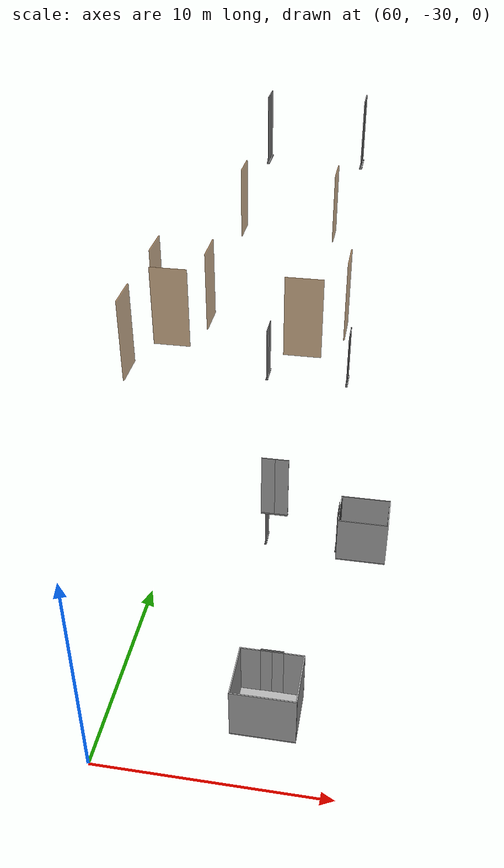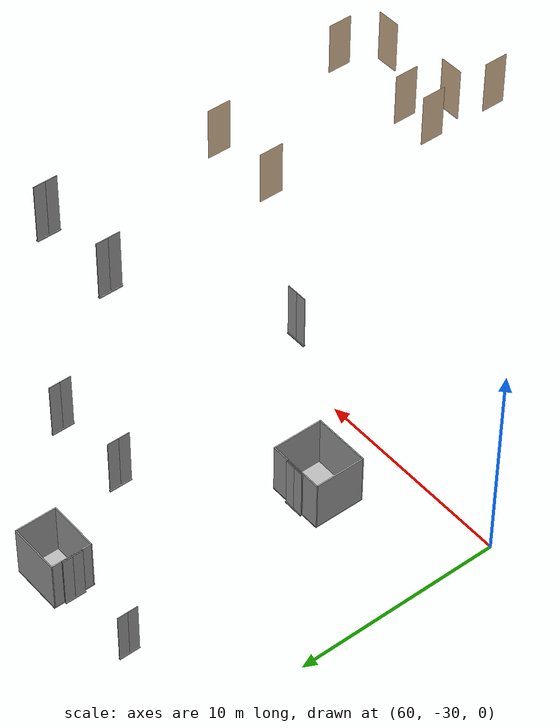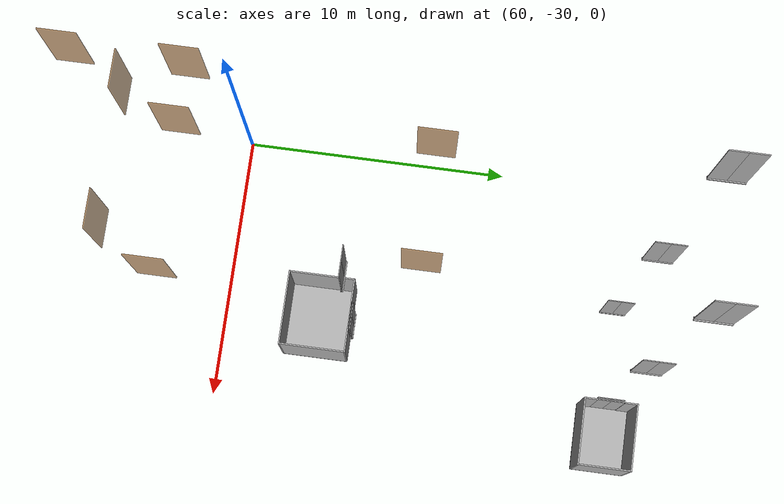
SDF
<sdf version="1.7">
 <world name="world">
  <include><uri>model://sun</uri></include>
  <model name="room18_door">
   <pose>65.2 -22.5 20.0 0 0 1.5707963267948966</pose>
   <plugin name="door" filename="libdoor.so">
    <v_max_door>0.5</v_max_door>
    <a_max_door>0.3</a_max_door>
    <a_nom_door>0.15</a_nom_door>
    <dx_min_door>0.01</dx_min_door>
    <f_max_door>500.0</f_max_door>
    <door name="room18_door" type="SwingDoor" left_joint_name="left_joint" right_joint_name="empty_joint"/>
   </plugin>
   <link name="left">
    <pose>0 0 1.11 0 0 0</pose>
    <visual name="left_visual">
     <geometry><box><size>0.99 0.03 2.2</size></box></geometry>
     <material><ambient>0.5 0.25 0 0.6</ambient><diffuse>0.5 0.25 0 0.6</diffuse></material>
    </visual>
    <collision name="left_collision">
     <geometry><box><size>0.99 0.03 2.2</size></box></geometry>
     <surface><contact><collide_bitmask>0x02</collide_bitmask></contact></surface>
    </collision>
    <inertial>
     <mass>50.0</mass>
     <inertia><ixx>20.17041666666667</ixx><iyy>24.250416666666673</iyy><izz>4.0875</izz></inertia>
    </inertial>
   </link>
   <joint name="left_joint" type="revolute">
    <parent>world</parent>
    <child>left</child>
    <axis><xyz>0 0 1</xyz><limit><lower>-1.57</lower><upper>0</upper></limit></axis>
    <pose>0.5 0 0 0 0 0</pose>
   </joint>
  </model>
  <model name="room19_door">
   <pose>63.95 -29.0 20.0 0 0 -1.5707963267948966</pose>
   <plugin name="door" filename="libdoor.so">
    <v_max_door>0.5</v_max_door>
    <a_max_door>0.3</a_max_door>
    <a_nom_door>0.15</a_nom_door>
    <dx_min_door>0.01</dx_min_door>
    <f_max_door>500.0</f_max_door>
    <door name="room19_door" type="SwingDoor" left_joint_name="empty_joint" right_joint_name="right_joint"/>
   </plugin>
   <link name="right">
    <pose>0 0 1.11 0 0 0</pose>
    <visual name="right_visual">
     <geometry><box><size>0.99 0.03 2.2</size></box></geometry>
     <material><ambient>0.5 0.25 0 0.6</ambient><diffuse>0.5 0.25 0 0.6</diffuse></material>
    </visual>
    <collision name="right_collision">
     <geometry><box><size>0.99 0.03 2.2</size></box></geometry>
     <surface><contact><collide_bitmask>0x02</collide_bitmask></contact></surface>
    </collision>
    <inertial>
     <mass>50.0</mass>
     <inertia><ixx>20.17041666666667</ixx><iyy>24.250416666666673</iyy><izz>4.0875</izz></inertia>
    </inertial>
   </link>
   <joint name="right_joint" type="revolute">
    <parent>world</parent>
    <child>right</child>
    <axis><xyz>0 0 1</xyz><limit><lower>0</lower><upper>1.57</upper></limit></axis>
    <pose>0.5 0 0 0 0 0</pose>
   </joint>
  </model>
  <model name="door7">
   <pose>65.45 -29.0 20.0 0 0 1.5707963267948966</pose>
   <plugin name="door" filename="libdoor.so">
    <v_max_door>0.5</v_max_door>
    <a_max_door>0.3</a_max_door>
    <a_nom_door>0.15</a_nom_door>
    <dx_min_door>0.01</dx_min_door>
    <f_max_door>500.0</f_max_door>
    <door name="door7" type="SwingDoor" left_joint_name="left_joint" right_joint_name="empty_joint"/>
   </plugin>
   <link name="left">
    <pose>0 0 1.11 0 0 0</pose>
    <visual name="left_visual">
     <geometry><box><size>0.99 0.03 2.2</size></box></geometry>
     <material><ambient>0.5 0.25 0 0.6</ambient><diffuse>0.5 0.25 0 0.6</diffuse></material>
    </visual>
    <collision name="left_collision">
     <geometry><box><size>0.99 0.03 2.2</size></box></geometry>
     <surface><contact><collide_bitmask>0x02</collide_bitmask></contact></surface>
    </collision>
    <inertial>
     <mass>50.0</mass>
     <inertia><ixx>20.17041666666667</ixx><iyy>24.250416666666673</iyy><izz>4.0875</izz></inertia>
    </inertial>
   </link>
   <joint name="left_joint" type="revolute">
    <parent>world</parent>
    <child>left</child>
    <axis><xyz>0 0 1</xyz><limit><lower>-1.57</lower><upper>0</upper></limit></axis>
    <pose>0.5 0 0 0 0 0</pose>
   </joint>
  </model>
  <model name="room20_door2">
   <pose>63.95 -32.0 20.0 0 0 -1.5707963267948966</pose>
   <plugin name="door" filename="libdoor.so">
    <v_max_door>0.5</v_max_door>
    <a_max_door>0.3</a_max_door>
    <a_nom_door>0.15</a_nom_door>
    <dx_min_door>0.01</dx_min_door>
    <f_max_door>500.0</f_max_door>
    <door name="room20_door2" type="SwingDoor" left_joint_name="empty_joint" right_joint_name="right_joint"/>
   </plugin>
   <link name="right">
    <pose>0 0 1.11 0 0 0</pose>
    <visual name="right_visual">
     <geometry><box><size>0.99 0.03 2.2</size></box></geometry>
     <material><ambient>0.5 0.25 0 0.6</ambient><diffuse>0.5 0.25 0 0.6</diffuse></material>
    </visual>
    <collision name="right_collision">
     <geometry><box><size>0.99 0.03 2.2</size></box></geometry>
     <surface><contact><collide_bitmask>0x02</collide_bitmask></contact></surface>
    </collision>
    <inertial>
     <mass>50.0</mass>
     <inertia><ixx>20.17041666666667</ixx><iyy>24.250416666666673</iyy><izz>4.0875</izz></inertia>
    </inertial>
   </link>
   <joint name="right_joint" type="revolute">
    <parent>world</parent>
    <child>right</child>
    <axis><xyz>0 0 1</xyz><limit><lower>0</lower><upper>1.57</upper></limit></axis>
    <pose>0.5 0 0 0 0 0</pose>
   </joint>
  </model>
  <model name="room20_door">
   <pose>64.7 -30.5 20.0 0 0 3.141592653589793</pose>
   <plugin name="door" filename="libdoor.so">
    <v_max_door>0.5</v_max_door>
    <a_max_door>0.3</a_max_door>
    <a_nom_door>0.15</a_nom_door>
    <dx_min_door>0.01</dx_min_door>
    <f_max_door>500.0</f_max_door>
    <door name="room20_door" type="SwingDoor" left_joint_name="left_joint" right_joint_name="empty_joint"/>
   </plugin>
   <link name="left">
    <pose>0 0 1.11 0 0 0</pose>
    <visual name="left_visual">
     <geometry><box><size>0.99 0.03 2.2</size></box></geometry>
     <material><ambient>0.5 0.25 0 0.6</ambient><diffuse>0.5 0.25 0 0.6</diffuse></material>
    </visual>
    <collision name="left_collision">
     <geometry><box><size>0.99 0.03 2.2</size></box></geometry>
     <surface><contact><collide_bitmask>0x02</collide_bitmask></contact></surface>
    </collision>
    <inertial>
     <mass>50.0</mass>
     <inertia><ixx>20.17041666666667</ixx><iyy>24.250416666666673</iyy><izz>4.0875</izz></inertia>
    </inertial>
   </link>
   <joint name="left_joint" type="revolute">
    <parent>world</parent>
    <child>left</child>
    <axis><xyz>0 0 1</xyz><limit><lower>-1.57</lower><upper>0</upper></limit></axis>
    <pose>0.5 0 0 0 0 0</pose>
   </joint>
  </model>
  <model name="room23_door">
   <pose>68.2 -22.5 20.0 0 0 1.5707963267948966</pose>
   <plugin name="door" filename="libdoor.so">
    <v_max_door>0.5</v_max_door>
    <a_max_door>0.3</a_max_door>
    <a_nom_door>0.15</a_nom_door>
    <dx_min_door>0.01</dx_min_door>
    <f_max_door>500.0</f_max_door>
    <door name="room23_door" type="SwingDoor" left_joint_name="empty_joint" right_joint_name="right_joint"/>
   </plugin>
   <link name="right">
    <pose>0 0 1.11 0 0 0</pose>
    <visual name="right_visual">
     <geometry><box><size>0.99 0.03 2.2</size></box></geometry>
     <material><ambient>0.5 0.25 0 0.6</ambient><diffuse>0.5 0.25 0 0.6</diffuse></material>
    </visual>
    <collision name="right_collision">
     <geometry><box><size>0.99 0.03 2.2</size></box></geometry>
     <surface><contact><collide_bitmask>0x02</collide_bitmask></contact></surface>
    </collision>
    <inertial>
     <mass>50.0</mass>
     <inertia><ixx>20.17041666666667</ixx><iyy>24.250416666666673</iyy><izz>4.0875</izz></inertia>
    </inertial>
   </link>
   <joint name="right_joint" type="revolute">
    <parent>world</parent>
    <child>right</child>
    <axis><xyz>0 0 1</xyz><limit><lower>0</lower><upper>1.57</upper></limit></axis>
    <pose>0.5 0 0 0 0 0</pose>
   </joint>
  </model>
  <model name="room21_door">
   <pose>68.2 -30.5 20.0 0 0 3.141592653589793</pose>
   <plugin name="door" filename="libdoor.so">
    <v_max_door>0.5</v_max_door>
    <a_max_door>0.3</a_max_door>
    <a_nom_door>0.15</a_nom_door>
    <dx_min_door>0.01</dx_min_door>
    <f_max_door>500.0</f_max_door>
    <door name="room21_door" type="SwingDoor" left_joint_name="left_joint" right_joint_name="empty_joint"/>
   </plugin>
   <link name="left">
    <pose>0 0 1.11 0 0 0</pose>
    <visual name="left_visual">
     <geometry><box><size>0.99 0.03 2.2</size></box></geometry>
     <material><ambient>0.5 0.25 0 0.6</ambient><diffuse>0.5 0.25 0 0.6</diffuse></material>
    </visual>
    <collision name="left_collision">
     <geometry><box><size>0.99 0.03 2.2</size></box></geometry>
     <surface><contact><collide_bitmask>0x02</collide_bitmask></contact></surface>
    </collision>
    <inertial>
     <mass>50.0</mass>
     <inertia><ixx>20.17041666666667</ixx><iyy>24.250416666666673</iyy><izz>4.0875</izz></inertia>
    </inertial>
   </link>
   <joint name="left_joint" type="revolute">
    <parent>world</parent>
    <child>left</child>
    <axis><xyz>0 0 1</xyz><limit><lower>-1.57</lower><upper>0</upper></limit></axis>
    <pose>0.5 0 0 0 0 0</pose>
   </joint>
  </model>
  <model name="room22_door">
   <pose>69.2 -29.0 20.0 0 0 -1.5707963267948966</pose>
   <plugin name="door" filename="libdoor.so">
    <v_max_door>0.5</v_max_door>
    <a_max_door>0.3</a_max_door>
    <a_nom_door>0.15</a_nom_door>
    <dx_min_door>0.01</dx_min_door>
    <f_max_door>500.0</f_max_door>
    <door name="room22_door" type="SwingDoor" left_joint_name="left_joint" right_joint_name="empty_joint"/>
   </plugin>
   <link name="left">
    <pose>0 0 1.11 0 0 0</pose>
    <visual name="left_visual">
     <geometry><box><size>0.99 0.03 2.2</size></box></geometry>
     <material><ambient>0.5 0.25 0 0.6</ambient><diffuse>0.5 0.25 0 0.6</diffuse></material>
    </visual>
    <collision name="left_collision">
     <geometry><box><size>0.99 0.03 2.2</size></box></geometry>
     <surface><contact><collide_bitmask>0x02</collide_bitmask></contact></surface>
    </collision>
    <inertial>
     <mass>50.0</mass>
     <inertia><ixx>20.17041666666667</ixx><iyy>24.250416666666673</iyy><izz>4.0875</izz></inertia>
    </inertial>
   </link>
   <joint name="left_joint" type="revolute">
    <parent>world</parent>
    <child>left</child>
    <axis><xyz>0 0 1</xyz><limit><lower>-1.57</lower><upper>0</upper></limit></axis>
    <pose>0.5 0 0 0 0 0</pose>
   </joint>
  </model>
  <model name="ShaftDoor_guest_lift2_L1_door">
   <pose>64.875 -15.125 0.0 0 0 1.5708</pose>
   <link name="right_door">
    <pose>0.25 0 1.25 0 0 0</pose>
    <visual name="right_door_visual">
     <geometry><box><size>0.5 0.03 2.5</size></box></geometry>
     <material>
      <ambient>0.5 0.5 0.5 1</ambient>
      <diffuse>0.7 0.7 0.7 1</diffuse>
      <specular>0.6 0.6 0.6 1</specular>
      <emissive>0.1 0.1 0.1 1</emissive>
     </material>
    </visual>
    <collision name="right_door_collision">
     <geometry><box><size>0.5 0.03 2.5</size></box></geometry>
     <surface><contact><collide_bitmask>0x02</collide_bitmask></contact></surface>
    </collision>
   </link>
   <joint name="right_joint" type="prismatic">
    <parent>world</parent>
    <child>right_door</child>
    <axis><xyz>1 0 0</xyz><limit><lower>0</lower><upper>0.5</upper></limit></axis>
   </joint>
   <link name="left_door">
    <pose>-0.25 0 1.25 0 0 0</pose>
    <visual name="left_door_visual">
     <geometry><box><size>0.5 0.03 2.5</size></box></geometry>
     <material>
      <ambient>0.5 0.5 0.5 1</ambient>
      <diffuse>0.7 0.7 0.7 1</diffuse>
      <specular>0.6 0.6 0.6 1</specular>
      <emissive>0.1 0.1 0.1 1</emissive>
     </material>
    </visual>
    <collision name="left_door_collision">
     <geometry><box><size>0.5 0.03 2.5</size></box></geometry>
     <surface><contact><collide_bitmask>0x02</collide_bitmask></contact></surface>
    </collision>
   </link>
   <joint name="left_joint" type="prismatic">
    <parent>world</parent>
    <child>left_door</child>
    <axis><xyz>1 0 0</xyz><limit><lower>-0.5</lower><upper>0</upper></limit></axis>
   </joint>
   <link name="ramp">
    <pose>0 0 -0.025 0 0 0</pose>
    <visual name="ramp_visual">
     <geometry><box><size>1.0 0.1 0.05</size></box></geometry>
     <material>
      <ambient>0.5 0.5 0.5 1</ambient>
      <diffuse>0.7 0.7 0.7 1</diffuse>
      <specular>0.6 0.6 0.6 1</specular>
      <emissive>0.1 0.1 0.1 1</emissive>
     </material>
    </visual>
    <collision name="ramp_collision">
     <geometry><box><size>1.0 0.1 0.05</size></box></geometry>
     <surface><contact><collide_bitmask>0x02</collide_bitmask></contact></surface>
    </collision>
   </link>
   <joint name="ramp_joint" type="fixed"><parent>world</parent><child>ramp</child></joint>
   <plugin name="door" filename="libdoor.so">
    <v_max_door>0.3</v_max_door>
    <a_max_door>0.2</a_max_door>
    <a_nom_door>0.1</a_nom_door>
    <dx_min_door>0.0001</dx_min_door>
    <f_max_door>35.0</f_max_door>
    <door left_joint_name="left_joint" name="ShaftDoor_guest_lift2_L1_door" right_joint_name="right_joint" type="DoubleSlidingDoor"/>
   </plugin>
  </model>
  <model name="ShaftDoor_guest_lift2_L2_door">
   <pose>64.875 -15.125 10.0 0 0 1.5708</pose>
   <link name="right_door">
    <pose>0.25 0 1.25 0 0 0</pose>
    <visual name="right_door_visual">
     <geometry><box><size>0.5 0.03 2.5</size></box></geometry>
     <material>
      <ambient>0.5 0.5 0.5 1</ambient>
      <diffuse>0.7 0.7 0.7 1</diffuse>
      <specular>0.6 0.6 0.6 1</specular>
      <emissive>0.1 0.1 0.1 1</emissive>
     </material>
    </visual>
    <collision name="right_door_collision">
     <geometry><box><size>0.5 0.03 2.5</size></box></geometry>
     <surface><contact><collide_bitmask>0x02</collide_bitmask></contact></surface>
    </collision>
   </link>
   <joint name="right_joint" type="prismatic">
    <parent>world</parent>
    <child>right_door</child>
    <axis><xyz>1 0 0</xyz><limit><lower>0</lower><upper>0.5</upper></limit></axis>
   </joint>
   <link name="left_door">
    <pose>-0.25 0 1.25 0 0 0</pose>
    <visual name="left_door_visual">
     <geometry><box><size>0.5 0.03 2.5</size></box></geometry>
     <material>
      <ambient>0.5 0.5 0.5 1</ambient>
      <diffuse>0.7 0.7 0.7 1</diffuse>
      <specular>0.6 0.6 0.6 1</specular>
      <emissive>0.1 0.1 0.1 1</emissive>
     </material>
    </visual>
    <collision name="left_door_collision">
     <geometry><box><size>0.5 0.03 2.5</size></box></geometry>
     <surface><contact><collide_bitmask>0x02</collide_bitmask></contact></surface>
    </collision>
   </link>
   <joint name="left_joint" type="prismatic">
    <parent>world</parent>
    <child>left_door</child>
    <axis><xyz>1 0 0</xyz><limit><lower>-0.5</lower><upper>0</upper></limit></axis>
   </joint>
   <link name="ramp">
    <pose>0 0 -0.025 0 0 0</pose>
    <visual name="ramp_visual">
     <geometry><box><size>1.0 0.1 0.05</size></box></geometry>
     <material>
      <ambient>0.5 0.5 0.5 1</ambient>
      <diffuse>0.7 0.7 0.7 1</diffuse>
      <specular>0.6 0.6 0.6 1</specular>
      <emissive>0.1 0.1 0.1 1</emissive>
     </material>
    </visual>
    <collision name="ramp_collision">
     <geometry><box><size>1.0 0.1 0.05</size></box></geometry>
     <surface><contact><collide_bitmask>0x02</collide_bitmask></contact></surface>
    </collision>
   </link>
   <joint name="ramp_joint" type="fixed"><parent>world</parent><child>ramp</child></joint>
   <plugin name="door" filename="libdoor.so">
    <v_max_door>0.3</v_max_door>
    <a_max_door>0.2</a_max_door>
    <a_nom_door>0.1</a_nom_door>
    <dx_min_door>0.0001</dx_min_door>
    <f_max_door>35.0</f_max_door>
    <door left_joint_name="left_joint" name="ShaftDoor_guest_lift2_L2_door" right_joint_name="right_joint" type="DoubleSlidingDoor"/>
   </plugin>
  </model>
  <model name="ShaftDoor_guest_lift2_L3_door">
   <pose>64.875 -15.125 20.0 0 0 1.5708</pose>
   <link name="right_door">
    <pose>0.25 0 1.25 0 0 0</pose>
    <visual name="right_door_visual">
     <geometry><box><size>0.5 0.03 2.5</size></box></geometry>
     <material>
      <ambient>0.5 0.5 0.5 1</ambient>
      <diffuse>0.7 0.7 0.7 1</diffuse>
      <specular>0.6 0.6 0.6 1</specular>
      <emissive>0.1 0.1 0.1 1</emissive>
     </material>
    </visual>
    <collision name="right_door_collision">
     <geometry><box><size>0.5 0.03 2.5</size></box></geometry>
     <surface><contact><collide_bitmask>0x02</collide_bitmask></contact></surface>
    </collision>
   </link>
   <joint name="right_joint" type="prismatic">
    <parent>world</parent>
    <child>right_door</child>
    <axis><xyz>1 0 0</xyz><limit><lower>0</lower><upper>0.5</upper></limit></axis>
   </joint>
   <link name="left_door">
    <pose>-0.25 0 1.25 0 0 0</pose>
    <visual name="left_door_visual">
     <geometry><box><size>0.5 0.03 2.5</size></box></geometry>
     <material>
      <ambient>0.5 0.5 0.5 1</ambient>
      <diffuse>0.7 0.7 0.7 1</diffuse>
      <specular>0.6 0.6 0.6 1</specular>
      <emissive>0.1 0.1 0.1 1</emissive>
     </material>
    </visual>
    <collision name="left_door_collision">
     <geometry><box><size>0.5 0.03 2.5</size></box></geometry>
     <surface><contact><collide_bitmask>0x02</collide_bitmask></contact></surface>
    </collision>
   </link>
   <joint name="left_joint" type="prismatic">
    <parent>world</parent>
    <child>left_door</child>
    <axis><xyz>1 0 0</xyz><limit><lower>-0.5</lower><upper>0</upper></limit></axis>
   </joint>
   <link name="ramp">
    <pose>0 0 -0.025 0 0 0</pose>
    <visual name="ramp_visual">
     <geometry><box><size>1.0 0.1 0.05</size></box></geometry>
     <material>
      <ambient>0.5 0.5 0.5 1</ambient>
      <diffuse>0.7 0.7 0.7 1</diffuse>
      <specular>0.6 0.6 0.6 1</specular>
      <emissive>0.1 0.1 0.1 1</emissive>
     </material>
    </visual>
    <collision name="ramp_collision">
     <geometry><box><size>1.0 0.1 0.05</size></box></geometry>
     <surface><contact><collide_bitmask>0x02</collide_bitmask></contact></surface>
    </collision>
   </link>
   <joint name="ramp_joint" type="fixed"><parent>world</parent><child>ramp</child></joint>
   <plugin name="door" filename="libdoor.so">
    <v_max_door>0.3</v_max_door>
    <a_max_door>0.2</a_max_door>
    <a_nom_door>0.1</a_nom_door>
    <dx_min_door>0.0001</dx_min_door>
    <f_max_door>35.0</f_max_door>
    <door left_joint_name="left_joint" name="ShaftDoor_guest_lift2_L3_door" right_joint_name="right_joint" type="DoubleSlidingDoor"/>
   </plugin>
  </model>
  <model name="ShaftDoor_guest_lift4_L1_door">
   <pose>68.525 -15.125 0.0 0 0 1.5708</pose>
   <link name="right_door">
    <pose>0.25 0 1.25 0 0 0</pose>
    <visual name="right_door_visual">
     <geometry><box><size>0.5 0.03 2.5</size></box></geometry>
     <material>
      <ambient>0.5 0.5 0.5 1</ambient>
      <diffuse>0.7 0.7 0.7 1</diffuse>
      <specular>0.6 0.6 0.6 1</specular>
      <emissive>0.1 0.1 0.1 1</emissive>
     </material>
    </visual>
    <collision name="right_door_collision">
     <geometry><box><size>0.5 0.03 2.5</size></box></geometry>
     <surface><contact><collide_bitmask>0x02</collide_bitmask></contact></surface>
    </collision>
   </link>
   <joint name="right_joint" type="prismatic">
    <parent>world</parent>
    <child>right_door</child>
    <axis><xyz>1 0 0</xyz><limit><lower>0</lower><upper>0.5</upper></limit></axis>
   </joint>
   <link name="left_door">
    <pose>-0.25 0 1.25 0 0 0</pose>
    <visual name="left_door_visual">
     <geometry><box><size>0.5 0.03 2.5</size></box></geometry>
     <material>
      <ambient>0.5 0.5 0.5 1</ambient>
      <diffuse>0.7 0.7 0.7 1</diffuse>
      <specular>0.6 0.6 0.6 1</specular>
      <emissive>0.1 0.1 0.1 1</emissive>
     </material>
    </visual>
    <collision name="left_door_collision">
     <geometry><box><size>0.5 0.03 2.5</size></box></geometry>
     <surface><contact><collide_bitmask>0x02</collide_bitmask></contact></surface>
    </collision>
   </link>
   <joint name="left_joint" type="prismatic">
    <parent>world</parent>
    <child>left_door</child>
    <axis><xyz>1 0 0</xyz><limit><lower>-0.5</lower><upper>0</upper></limit></axis>
   </joint>
   <link name="ramp">
    <pose>0 0 -0.025 0 0 0</pose>
    <visual name="ramp_visual">
     <geometry><box><size>1.0 0.1 0.05</size></box></geometry>
     <material>
      <ambient>0.5 0.5 0.5 1</ambient>
      <diffuse>0.7 0.7 0.7 1</diffuse>
      <specular>0.6 0.6 0.6 1</specular>
      <emissive>0.1 0.1 0.1 1</emissive>
     </material>
    </visual>
    <collision name="ramp_collision">
     <geometry><box><size>1.0 0.1 0.05</size></box></geometry>
     <surface><contact><collide_bitmask>0x02</collide_bitmask></contact></surface>
    </collision>
   </link>
   <joint name="ramp_joint" type="fixed"><parent>world</parent><child>ramp</child></joint>
   <plugin name="door" filename="libdoor.so">
    <v_max_door>0.3</v_max_door>
    <a_max_door>0.2</a_max_door>
    <a_nom_door>0.1</a_nom_door>
    <dx_min_door>0.0001</dx_min_door>
    <f_max_door>35.0</f_max_door>
    <door left_joint_name="left_joint" name="ShaftDoor_guest_lift4_L1_door" right_joint_name="right_joint" type="DoubleSlidingDoor"/>
   </plugin>
  </model>
  <model name="ShaftDoor_guest_lift4_L2_door">
   <pose>68.525 -15.125 10.0 0 0 1.5708</pose>
   <link name="right_door">
    <pose>0.25 0 1.25 0 0 0</pose>
    <visual name="right_door_visual">
     <geometry><box><size>0.5 0.03 2.5</size></box></geometry>
     <material>
      <ambient>0.5 0.5 0.5 1</ambient>
      <diffuse>0.7 0.7 0.7 1</diffuse>
      <specular>0.6 0.6 0.6 1</specular>
      <emissive>0.1 0.1 0.1 1</emissive>
     </material>
    </visual>
    <collision name="right_door_collision">
     <geometry><box><size>0.5 0.03 2.5</size></box></geometry>
     <surface><contact><collide_bitmask>0x02</collide_bitmask></contact></surface>
    </collision>
   </link>
   <joint name="right_joint" type="prismatic">
    <parent>world</parent>
    <child>right_door</child>
    <axis><xyz>1 0 0</xyz><limit><lower>0</lower><upper>0.5</upper></limit></axis>
   </joint>
   <link name="left_door">
    <pose>-0.25 0 1.25 0 0 0</pose>
    <visual name="left_door_visual">
     <geometry><box><size>0.5 0.03 2.5</size></box></geometry>
     <material>
      <ambient>0.5 0.5 0.5 1</ambient>
      <diffuse>0.7 0.7 0.7 1</diffuse>
      <specular>0.6 0.6 0.6 1</specular>
      <emissive>0.1 0.1 0.1 1</emissive>
     </material>
    </visual>
    <collision name="left_door_collision">
     <geometry><box><size>0.5 0.03 2.5</size></box></geometry>
     <surface><contact><collide_bitmask>0x02</collide_bitmask></contact></surface>
    </collision>
   </link>
   <joint name="left_joint" type="prismatic">
    <parent>world</parent>
    <child>left_door</child>
    <axis><xyz>1 0 0</xyz><limit><lower>-0.5</lower><upper>0</upper></limit></axis>
   </joint>
   <link name="ramp">
    <pose>0 0 -0.025 0 0 0</pose>
    <visual name="ramp_visual">
     <geometry><box><size>1.0 0.1 0.05</size></box></geometry>
     <material>
      <ambient>0.5 0.5 0.5 1</ambient>
      <diffuse>0.7 0.7 0.7 1</diffuse>
      <specular>0.6 0.6 0.6 1</specular>
      <emissive>0.1 0.1 0.1 1</emissive>
     </material>
    </visual>
    <collision name="ramp_collision">
     <geometry><box><size>1.0 0.1 0.05</size></box></geometry>
     <surface><contact><collide_bitmask>0x02</collide_bitmask></contact></surface>
    </collision>
   </link>
   <joint name="ramp_joint" type="fixed"><parent>world</parent><child>ramp</child></joint>
   <plugin name="door" filename="libdoor.so">
    <v_max_door>0.3</v_max_door>
    <a_max_door>0.2</a_max_door>
    <a_nom_door>0.1</a_nom_door>
    <dx_min_door>0.0001</dx_min_door>
    <f_max_door>35.0</f_max_door>
    <door left_joint_name="left_joint" name="ShaftDoor_guest_lift4_L2_door" right_joint_name="right_joint" type="DoubleSlidingDoor"/>
   </plugin>
  </model>
  <model name="ShaftDoor_guest_lift4_L3_door">
   <pose>68.525 -15.125 20.0 0 0 1.5708</pose>
   <link name="right_door">
    <pose>0.25 0 1.25 0 0 0</pose>
    <visual name="right_door_visual">
     <geometry><box><size>0.5 0.03 2.5</size></box></geometry>
     <material>
      <ambient>0.5 0.5 0.5 1</ambient>
      <diffuse>0.7 0.7 0.7 1</diffuse>
      <specular>0.6 0.6 0.6 1</specular>
      <emissive>0.1 0.1 0.1 1</emissive>
     </material>
    </visual>
    <collision name="right_door_collision">
     <geometry><box><size>0.5 0.03 2.5</size></box></geometry>
     <surface><contact><collide_bitmask>0x02</collide_bitmask></contact></surface>
    </collision>
   </link>
   <joint name="right_joint" type="prismatic">
    <parent>world</parent>
    <child>right_door</child>
    <axis><xyz>1 0 0</xyz><limit><lower>0</lower><upper>0.5</upper></limit></axis>
   </joint>
   <link name="left_door">
    <pose>-0.25 0 1.25 0 0 0</pose>
    <visual name="left_door_visual">
     <geometry><box><size>0.5 0.03 2.5</size></box></geometry>
     <material>
      <ambient>0.5 0.5 0.5 1</ambient>
      <diffuse>0.7 0.7 0.7 1</diffuse>
      <specular>0.6 0.6 0.6 1</specular>
      <emissive>0.1 0.1 0.1 1</emissive>
     </material>
    </visual>
    <collision name="left_door_collision">
     <geometry><box><size>0.5 0.03 2.5</size></box></geometry>
     <surface><contact><collide_bitmask>0x02</collide_bitmask></contact></surface>
    </collision>
   </link>
   <joint name="left_joint" type="prismatic">
    <parent>world</parent>
    <child>left_door</child>
    <axis><xyz>1 0 0</xyz><limit><lower>-0.5</lower><upper>0</upper></limit></axis>
   </joint>
   <link name="ramp">
    <pose>0 0 -0.025 0 0 0</pose>
    <visual name="ramp_visual">
     <geometry><box><size>1.0 0.1 0.05</size></box></geometry>
     <material>
      <ambient>0.5 0.5 0.5 1</ambient>
      <diffuse>0.7 0.7 0.7 1</diffuse>
      <specular>0.6 0.6 0.6 1</specular>
      <emissive>0.1 0.1 0.1 1</emissive>
     </material>
    </visual>
    <collision name="ramp_collision">
     <geometry><box><size>1.0 0.1 0.05</size></box></geometry>
     <surface><contact><collide_bitmask>0x02</collide_bitmask></contact></surface>
    </collision>
   </link>
   <joint name="ramp_joint" type="fixed"><parent>world</parent><child>ramp</child></joint>
   <plugin name="door" filename="libdoor.so">
    <v_max_door>0.3</v_max_door>
    <a_max_door>0.2</a_max_door>
    <a_nom_door>0.1</a_nom_door>
    <dx_min_door>0.0001</dx_min_door>
    <f_max_door>35.0</f_max_door>
    <door left_joint_name="left_joint" name="ShaftDoor_guest_lift4_L3_door" right_joint_name="right_joint" type="DoubleSlidingDoor"/>
   </plugin>
  </model>
  <model name="guest_lift4">
   <link name="platform">
    <inertial>
     <mass>1200</mass>
     <inertia><ixx>625.25</ixx><iyy>400.25000000000006</iyy><izz>1025.0</izz></inertia>
    </inertial>
    <visual name="floor">
     <pose>0 0 -0.025 0 0 0</pose>
     <geometry><box><size>2.5 2.0 0.05</size></box></geometry>
     <material>
      <ambient>0.5 0.5 0.5 1</ambient>
      <diffuse>0.7 0.7 0.7 1</diffuse>
      <specular>0.6 0.6 0.6 1</specular>
      <emissive>0.1 0.1 0.1 1</emissive>
     </material>
    </visual>
    <collision name="floor">
     <pose>0 0 -0.025 0 0 0</pose>
     <geometry><box><size>2.5 2.0 0.05</size></box></geometry>
     <surface><contact><collide_bitmask>0x01</collide_bitmask></contact></surface>
    </collision>
    <visual name="frontwall1">
     <pose>0.0 0.975 1.25 0 0 0</pose>
     <geometry><box><size>2.5 0.05 2.5</size></box></geometry>
     <material>
      <ambient>0.5 0.5 0.5 1</ambient>
      <diffuse>0.7 0.7 0.7 1</diffuse>
      <specular>0.6 0.6 0.6 1</specular>
      <emissive>0.1 0.1 0.1 1</emissive>
     </material>
    </visual>
    <collision name="frontwall1">
     <pose>0.0 0.975 1.25 0 0 0</pose>
     <geometry><box><size>2.5 0.05 2.5</size></box></geometry>
     <surface><contact><collide_bitmask>0x01</collide_bitmask></contact></surface>
    </collision>
    <visual name="backwall1">
     <pose>0.0 -0.975 1.25 0 0 0</pose>
     <geometry><box><size>2.5 0.05 2.5</size></box></geometry>
     <material>
      <ambient>0.5 0.5 0.5 1</ambient>
      <diffuse>0.7 0.7 0.7 1</diffuse>
      <specular>0.6 0.6 0.6 1</specular>
      <emissive>0.1 0.1 0.1 1</emissive>
     </material>
    </visual>
    <collision name="backwall1">
     <pose>0.0 -0.975 1.25 0 0 0</pose>
     <geometry><box><size>2.5 0.05 2.5</size></box></geometry>
     <surface><contact><collide_bitmask>0x01</collide_bitmask></contact></surface>
    </collision>
    <visual name="leftwall1">
     <pose>-1.225 -0.725 1.25 0 0 1.5707963267948966</pose>
     <geometry><box><size>0.44999999999999996 0.05 2.5</size></box></geometry>
     <material>
      <ambient>0.5 0.5 0.5 1</ambient>
      <diffuse>0.7 0.7 0.7 1</diffuse>
      <specular>0.6 0.6 0.6 1</specular>
      <emissive>0.1 0.1 0.1 1</emissive>
     </material>
    </visual>
    <collision name="leftwall1">
     <pose>-1.225 -0.725 1.25 0 0 1.5707963267948966</pose>
     <geometry><box><size>0.44999999999999996 0.05 2.5</size></box></geometry>
     <surface><contact><collide_bitmask>0x01</collide_bitmask></contact></surface>
    </collision>
    <visual name="leftwall2">
     <pose>-1.225 0.725 1.25 0 0 1.5707963267948966</pose>
     <geometry><box><size>0.44999999999999996 0.05 2.5</size></box></geometry>
     <material>
      <ambient>0.5 0.5 0.5 1</ambient>
      <diffuse>0.7 0.7 0.7 1</diffuse>
      <specular>0.6 0.6 0.6 1</specular>
      <emissive>0.1 0.1 0.1 1</emissive>
     </material>
    </visual>
    <collision name="leftwall2">
     <pose>-1.225 0.725 1.25 0 0 1.5707963267948966</pose>
     <geometry><box><size>0.44999999999999996 0.05 2.5</size></box></geometry>
     <surface><contact><collide_bitmask>0x01</collide_bitmask></contact></surface>
    </collision>
    <visual name="rightwall1">
     <pose>1.225 0.0 1.25 0 0 1.5707963267948966</pose>
     <geometry><box><size>1.9 0.05 2.5</size></box></geometry>
     <material>
      <ambient>0.5 0.5 0.5 1</ambient>
      <diffuse>0.7 0.7 0.7 1</diffuse>
      <specular>0.6 0.6 0.6 1</specular>
      <emissive>0.1 0.1 0.1 1</emissive>
     </material>
    </visual>
    <collision name="rightwall1">
     <pose>1.225 0.0 1.25 0 0 1.5707963267948966</pose>
     <geometry><box><size>1.9 0.05 2.5</size></box></geometry>
     <surface><contact><collide_bitmask>0x01</collide_bitmask></contact></surface>
    </collision>
   </link>
   <joint name="cabin_joint" type="prismatic">
    <parent>world</parent>
    <child>platform</child>
    <axis><xyz>0 0 1</xyz></axis>
   </joint>
   <model name="CabinDoor_guest_lift4_door">
    <pose>-1.225 0.0 0 0 0 1.5708</pose>
    <link name="right_door">
     <pose>0.25 0 1.25 0 0 0</pose>
     <visual name="right_door_visual">
      <geometry><box><size>0.5 0.03 2.5</size></box></geometry>
      <material>
       <ambient>0.5 0.5 0.5 1</ambient>
       <diffuse>0.7 0.7 0.7 1</diffuse>
       <specular>0.6 0.6 0.6 1</specular>
       <emissive>0.1 0.1 0.1 1</emissive>
      </material>
     </visual>
     <collision name="right_door_collision">
      <geometry><box><size>0.5 0.03 2.5</size></box></geometry>
      <surface><contact><collide_bitmask>0x02</collide_bitmask></contact></surface>
     </collision>
    </link>
    <joint name="right_joint" type="prismatic">
     <parent>platform</parent>
     <child>right_door</child>
     <axis><xyz>1 0 0</xyz><limit><lower>0</lower><upper>0.5</upper></limit></axis>
    </joint>
    <link name="left_door">
     <pose>-0.25 0 1.25 0 0 0</pose>
     <visual name="left_door_visual">
      <geometry><box><size>0.5 0.03 2.5</size></box></geometry>
      <material>
       <ambient>0.5 0.5 0.5 1</ambient>
       <diffuse>0.7 0.7 0.7 1</diffuse>
       <specular>0.6 0.6 0.6 1</specular>
       <emissive>0.1 0.1 0.1 1</emissive>
      </material>
     </visual>
     <collision name="left_door_collision">
      <geometry><box><size>0.5 0.03 2.5</size></box></geometry>
      <surface><contact><collide_bitmask>0x02</collide_bitmask></contact></surface>
     </collision>
    </link>
    <joint name="left_joint" type="prismatic">
     <parent>platform</parent>
     <child>left_door</child>
     <axis><xyz>1 0 0</xyz><limit><lower>-0.5</lower><upper>0</upper></limit></axis>
    </joint>
    <plugin name="door" filename="libdoor.so">
     <v_max_door>0.3</v_max_door>
     <a_max_door>0.2</a_max_door>
     <a_nom_door>0.1</a_nom_door>
     <dx_min_door>0.0001</dx_min_door>
     <f_max_door>35.0</f_max_door>
     <door left_joint_name="left_joint" name="CabinDoor_guest_lift4_door" right_joint_name="right_joint" type="DoubleSlidingDoor"/>
    </plugin>
   </model>
   <plugin name="lift" filename="liblift.so">
    <lift_name>guest_lift4</lift_name>
    <floor name="L1" elevation="0.0">
     <door_pair cabin_door="CabinDoor_guest_lift4_door" shaft_door="ShaftDoor_guest_lift4_L1_door"/>
    </floor>
    <floor name="L2" elevation="10.0">
     <door_pair cabin_door="CabinDoor_guest_lift4_door" shaft_door="ShaftDoor_guest_lift4_L2_door"/>
    </floor>
    <floor name="L3" elevation="20.0">
     <door_pair cabin_door="CabinDoor_guest_lift4_door" shaft_door="ShaftDoor_guest_lift4_L3_door"/>
    </floor>
    <initial_floor>L1</initial_floor>
    <v_max_cabin>2.0</v_max_cabin>
    <a_max_cabin>1.2</a_max_cabin>
    <a_nom_cabin>1.0</a_nom_cabin>
    <dx_min_cabin>0.001</dx_min_cabin>
    <f_max_cabin>25323.0</f_max_cabin>
    <cabin_joint_name>cabin_joint</cabin_joint_name>
   </plugin>
   <pose>69.825 -15.125 0 0 0 0.0</pose>
  </model>
  <model name="ShaftDoor_guest_lift6_L1_door">
   <pose>66.715 -25.025000000000002 0.0 0 0 0.0</pose>
   <link name="right_door">
    <pose>0.25 0 1.25 0 0 0</pose>
    <visual name="right_door_visual">
     <geometry><box><size>0.5 0.03 2.5</size></box></geometry>
     <material>
      <ambient>0.5 0.5 0.5 1</ambient>
      <diffuse>0.7 0.7 0.7 1</diffuse>
      <specular>0.6 0.6 0.6 1</specular>
      <emissive>0.1 0.1 0.1 1</emissive>
     </material>
    </visual>
    <collision name="right_door_collision">
     <geometry><box><size>0.5 0.03 2.5</size></box></geometry>
     <surface><contact><collide_bitmask>0x02</collide_bitmask></contact></surface>
    </collision>
   </link>
   <joint name="right_joint" type="prismatic">
    <parent>world</parent>
    <child>right_door</child>
    <axis><xyz>1 0 0</xyz><limit><lower>0</lower><upper>0.5</upper></limit></axis>
   </joint>
   <link name="left_door">
    <pose>-0.25 0 1.25 0 0 0</pose>
    <visual name="left_door_visual">
     <geometry><box><size>0.5 0.03 2.5</size></box></geometry>
     <material>
      <ambient>0.5 0.5 0.5 1</ambient>
      <diffuse>0.7 0.7 0.7 1</diffuse>
      <specular>0.6 0.6 0.6 1</specular>
      <emissive>0.1 0.1 0.1 1</emissive>
     </material>
    </visual>
    <collision name="left_door_collision">
     <geometry><box><size>0.5 0.03 2.5</size></box></geometry>
     <surface><contact><collide_bitmask>0x02</collide_bitmask></contact></surface>
    </collision>
   </link>
   <joint name="left_joint" type="prismatic">
    <parent>world</parent>
    <child>left_door</child>
    <axis><xyz>1 0 0</xyz><limit><lower>-0.5</lower><upper>0</upper></limit></axis>
   </joint>
   <link name="ramp">
    <pose>0 0 -0.025 0 0 0</pose>
    <visual name="ramp_visual">
     <geometry><box><size>1.0 0.1 0.05</size></box></geometry>
     <material>
      <ambient>0.5 0.5 0.5 1</ambient>
      <diffuse>0.7 0.7 0.7 1</diffuse>
      <specular>0.6 0.6 0.6 1</specular>
      <emissive>0.1 0.1 0.1 1</emissive>
     </material>
    </visual>
    <collision name="ramp_collision">
     <geometry><box><size>1.0 0.1 0.05</size></box></geometry>
     <surface><contact><collide_bitmask>0x02</collide_bitmask></contact></surface>
    </collision>
   </link>
   <joint name="ramp_joint" type="fixed"><parent>world</parent><child>ramp</child></joint>
   <plugin name="door" filename="libdoor.so">
    <v_max_door>0.3</v_max_door>
    <a_max_door>0.2</a_max_door>
    <a_nom_door>0.1</a_nom_door>
    <dx_min_door>0.0001</dx_min_door>
    <f_max_door>35.0</f_max_door>
    <door left_joint_name="left_joint" name="ShaftDoor_guest_lift6_L1_door" right_joint_name="right_joint" type="DoubleSlidingDoor"/>
   </plugin>
  </model>
  <model name="ShaftDoor_guest_lift6_L2_door">
   <pose>66.715 -25.025000000000002 10.0 0 0 0.0</pose>
   <link name="right_door">
    <pose>0.25 0 1.25 0 0 0</pose>
    <visual name="right_door_visual">
     <geometry><box><size>0.5 0.03 2.5</size></box></geometry>
     <material>
      <ambient>0.5 0.5 0.5 1</ambient>
      <diffuse>0.7 0.7 0.7 1</diffuse>
      <specular>0.6 0.6 0.6 1</specular>
      <emissive>0.1 0.1 0.1 1</emissive>
     </material>
    </visual>
    <collision name="right_door_collision">
     <geometry><box><size>0.5 0.03 2.5</size></box></geometry>
     <surface><contact><collide_bitmask>0x02</collide_bitmask></contact></surface>
    </collision>
   </link>
   <joint name="right_joint" type="prismatic">
    <parent>world</parent>
    <child>right_door</child>
    <axis><xyz>1 0 0</xyz><limit><lower>0</lower><upper>0.5</upper></limit></axis>
   </joint>
   <link name="left_door">
    <pose>-0.25 0 1.25 0 0 0</pose>
    <visual name="left_door_visual">
     <geometry><box><size>0.5 0.03 2.5</size></box></geometry>
     <material>
      <ambient>0.5 0.5 0.5 1</ambient>
      <diffuse>0.7 0.7 0.7 1</diffuse>
      <specular>0.6 0.6 0.6 1</specular>
      <emissive>0.1 0.1 0.1 1</emissive>
     </material>
    </visual>
    <collision name="left_door_collision">
     <geometry><box><size>0.5 0.03 2.5</size></box></geometry>
     <surface><contact><collide_bitmask>0x02</collide_bitmask></contact></surface>
    </collision>
   </link>
   <joint name="left_joint" type="prismatic">
    <parent>world</parent>
    <child>left_door</child>
    <axis><xyz>1 0 0</xyz><limit><lower>-0.5</lower><upper>0</upper></limit></axis>
   </joint>
   <link name="ramp">
    <pose>0 0 -0.025 0 0 0</pose>
    <visual name="ramp_visual">
     <geometry><box><size>1.0 0.1 0.05</size></box></geometry>
     <material>
      <ambient>0.5 0.5 0.5 1</ambient>
      <diffuse>0.7 0.7 0.7 1</diffuse>
      <specular>0.6 0.6 0.6 1</specular>
      <emissive>0.1 0.1 0.1 1</emissive>
     </material>
    </visual>
    <collision name="ramp_collision">
     <geometry><box><size>1.0 0.1 0.05</size></box></geometry>
     <surface><contact><collide_bitmask>0x02</collide_bitmask></contact></surface>
    </collision>
   </link>
   <joint name="ramp_joint" type="fixed"><parent>world</parent><child>ramp</child></joint>
   <plugin name="door" filename="libdoor.so">
    <v_max_door>0.3</v_max_door>
    <a_max_door>0.2</a_max_door>
    <a_nom_door>0.1</a_nom_door>
    <dx_min_door>0.0001</dx_min_door>
    <f_max_door>35.0</f_max_door>
    <door left_joint_name="left_joint" name="ShaftDoor_guest_lift6_L2_door" right_joint_name="right_joint" type="DoubleSlidingDoor"/>
   </plugin>
  </model>
  <model name="guest_lift6">
   <link name="platform">
    <inertial>
     <mass>1200</mass>
     <inertia><ixx>784.2499999999999</ixx><iyy>625.25</iyy><izz>1409.0</izz></inertia>
    </inertial>
    <visual name="floor">
     <pose>0 0 -0.025 0 0 0</pose>
     <geometry><box><size>2.8 2.5 0.05</size></box></geometry>
     <material>
      <ambient>0.5 0.5 0.5 1</ambient>
      <diffuse>0.7 0.7 0.7 1</diffuse>
      <specular>0.6 0.6 0.6 1</specular>
      <emissive>0.1 0.1 0.1 1</emissive>
     </material>
    </visual>
    <collision name="floor">
     <pose>0 0 -0.025 0 0 0</pose>
     <geometry><box><size>2.8 2.5 0.05</size></box></geometry>
     <surface><contact><collide_bitmask>0x01</collide_bitmask></contact></surface>
    </collision>
    <visual name="frontwall1">
     <pose>-0.95 1.225 1.25 0 0 0</pose>
     <geometry><box><size>0.8999999999999999 0.05 2.5</size></box></geometry>
     <material>
      <ambient>0.5 0.5 0.5 1</ambient>
      <diffuse>0.7 0.7 0.7 1</diffuse>
      <specular>0.6 0.6 0.6 1</specular>
      <emissive>0.1 0.1 0.1 1</emissive>
     </material>
    </visual>
    <collision name="frontwall1">
     <pose>-0.95 1.225 1.25 0 0 0</pose>
     <geometry><box><size>0.8999999999999999 0.05 2.5</size></box></geometry>
     <surface><contact><collide_bitmask>0x01</collide_bitmask></contact></surface>
    </collision>
    <visual name="frontwall2">
     <pose>0.95 1.225 1.25 0 0 0</pose>
     <geometry><box><size>0.8999999999999999 0.05 2.5</size></box></geometry>
     <material>
      <ambient>0.5 0.5 0.5 1</ambient>
      <diffuse>0.7 0.7 0.7 1</diffuse>
      <specular>0.6 0.6 0.6 1</specular>
      <emissive>0.1 0.1 0.1 1</emissive>
     </material>
    </visual>
    <collision name="frontwall2">
     <pose>0.95 1.225 1.25 0 0 0</pose>
     <geometry><box><size>0.8999999999999999 0.05 2.5</size></box></geometry>
     <surface><contact><collide_bitmask>0x01</collide_bitmask></contact></surface>
    </collision>
    <visual name="backwall1">
     <pose>0.0 -1.225 1.25 0 0 0</pose>
     <geometry><box><size>2.8 0.05 2.5</size></box></geometry>
     <material>
      <ambient>0.5 0.5 0.5 1</ambient>
      <diffuse>0.7 0.7 0.7 1</diffuse>
      <specular>0.6 0.6 0.6 1</specular>
      <emissive>0.1 0.1 0.1 1</emissive>
     </material>
    </visual>
    <collision name="backwall1">
     <pose>0.0 -1.225 1.25 0 0 0</pose>
     <geometry><box><size>2.8 0.05 2.5</size></box></geometry>
     <surface><contact><collide_bitmask>0x01</collide_bitmask></contact></surface>
    </collision>
    <visual name="leftwall1">
     <pose>-1.375 0.0 1.25 0 0 1.5707963267948966</pose>
     <geometry><box><size>2.4 0.05 2.5</size></box></geometry>
     <material>
      <ambient>0.5 0.5 0.5 1</ambient>
      <diffuse>0.7 0.7 0.7 1</diffuse>
      <specular>0.6 0.6 0.6 1</specular>
      <emissive>0.1 0.1 0.1 1</emissive>
     </material>
    </visual>
    <collision name="leftwall1">
     <pose>-1.375 0.0 1.25 0 0 1.5707963267948966</pose>
     <geometry><box><size>2.4 0.05 2.5</size></box></geometry>
     <surface><contact><collide_bitmask>0x01</collide_bitmask></contact></surface>
    </collision>
    <visual name="rightwall1">
     <pose>1.375 0.0 1.25 0 0 1.5707963267948966</pose>
     <geometry><box><size>2.4 0.05 2.5</size></box></geometry>
     <material>
      <ambient>0.5 0.5 0.5 1</ambient>
      <diffuse>0.7 0.7 0.7 1</diffuse>
      <specular>0.6 0.6 0.6 1</specular>
      <emissive>0.1 0.1 0.1 1</emissive>
     </material>
    </visual>
    <collision name="rightwall1">
     <pose>1.375 0.0 1.25 0 0 1.5707963267948966</pose>
     <geometry><box><size>2.4 0.05 2.5</size></box></geometry>
     <surface><contact><collide_bitmask>0x01</collide_bitmask></contact></surface>
    </collision>
   </link>
   <joint name="cabin_joint" type="prismatic">
    <parent>world</parent>
    <child>platform</child>
    <axis><xyz>0 0 1</xyz></axis>
   </joint>
   <model name="CabinDoor_guest_lift6_door">
    <pose>0.0 1.225 0 0 0 0.0</pose>
    <link name="right_door">
     <pose>0.25 0 1.25 0 0 0</pose>
     <visual name="right_door_visual">
      <geometry><box><size>0.5 0.03 2.5</size></box></geometry>
      <material>
       <ambient>0.5 0.5 0.5 1</ambient>
       <diffuse>0.7 0.7 0.7 1</diffuse>
       <specular>0.6 0.6 0.6 1</specular>
       <emissive>0.1 0.1 0.1 1</emissive>
      </material>
     </visual>
     <collision name="right_door_collision">
      <geometry><box><size>0.5 0.03 2.5</size></box></geometry>
      <surface><contact><collide_bitmask>0x02</collide_bitmask></contact></surface>
     </collision>
    </link>
    <joint name="right_joint" type="prismatic">
     <parent>platform</parent>
     <child>right_door</child>
     <axis><xyz>1 0 0</xyz><limit><lower>0</lower><upper>0.5</upper></limit></axis>
    </joint>
    <link name="left_door">
     <pose>-0.25 0 1.25 0 0 0</pose>
     <visual name="left_door_visual">
      <geometry><box><size>0.5 0.03 2.5</size></box></geometry>
      <material>
       <ambient>0.5 0.5 0.5 1</ambient>
       <diffuse>0.7 0.7 0.7 1</diffuse>
       <specular>0.6 0.6 0.6 1</specular>
       <emissive>0.1 0.1 0.1 1</emissive>
      </material>
     </visual>
     <collision name="left_door_collision">
      <geometry><box><size>0.5 0.03 2.5</size></box></geometry>
      <surface><contact><collide_bitmask>0x02</collide_bitmask></contact></surface>
     </collision>
    </link>
    <joint name="left_joint" type="prismatic">
     <parent>platform</parent>
     <child>left_door</child>
     <axis><xyz>1 0 0</xyz><limit><lower>-0.5</lower><upper>0</upper></limit></axis>
    </joint>
    <plugin name="door" filename="libdoor.so">
     <v_max_door>0.3</v_max_door>
     <a_max_door>0.2</a_max_door>
     <a_nom_door>0.1</a_nom_door>
     <dx_min_door>0.0001</dx_min_door>
     <f_max_door>35.0</f_max_door>
     <door left_joint_name="left_joint" name="CabinDoor_guest_lift6_door" right_joint_name="right_joint" type="DoubleSlidingDoor"/>
    </plugin>
   </model>
   <plugin name="lift" filename="liblift.so">
    <lift_name>guest_lift6</lift_name>
    <floor name="L1" elevation="0.0">
     <door_pair cabin_door="CabinDoor_guest_lift6_door" shaft_door="ShaftDoor_guest_lift6_L1_door"/>
    </floor>
    <floor name="L2" elevation="10.0">
     <door_pair cabin_door="CabinDoor_guest_lift6_door" shaft_door="ShaftDoor_guest_lift6_L2_door"/>
    </floor>
    <initial_floor>L1</initial_floor>
    <v_max_cabin>2.0</v_max_cabin>
    <a_max_cabin>1.2</a_max_cabin>
    <a_nom_cabin>1.0</a_nom_cabin>
    <dx_min_cabin>0.001</dx_min_cabin>
    <f_max_cabin>25323.0</f_max_cabin>
    <cabin_joint_name>cabin_joint</cabin_joint_name>
   </plugin>
   <pose>66.715 -26.325000000000003 0 0 0 0.0</pose>
  </model>
 </world>
</sdf>
